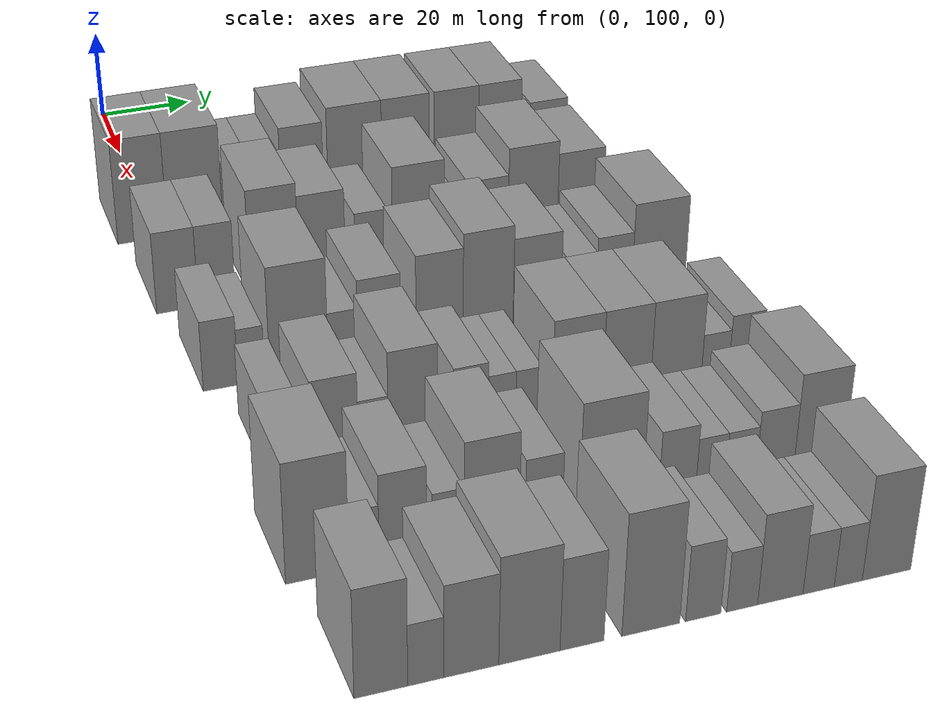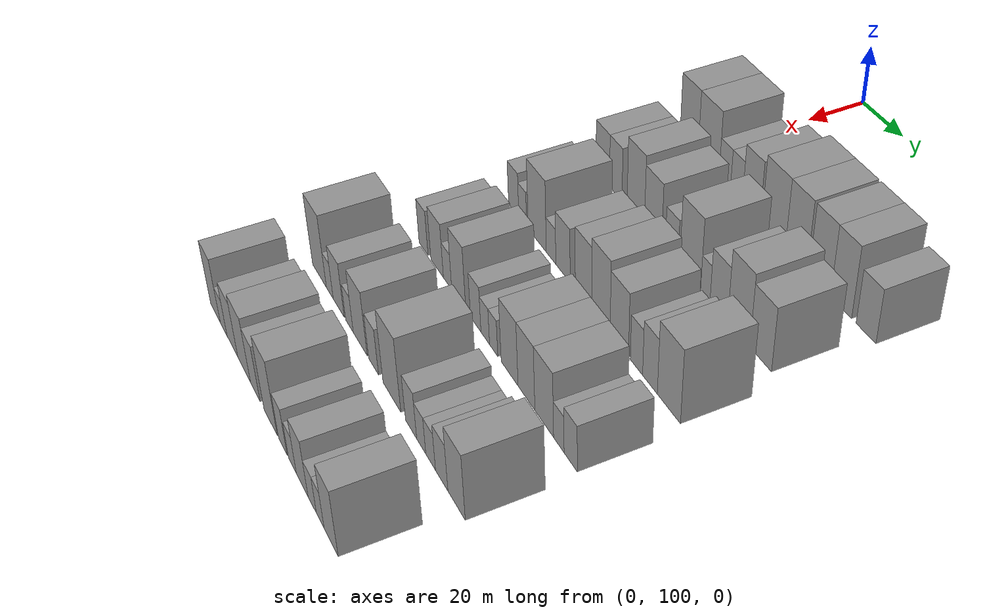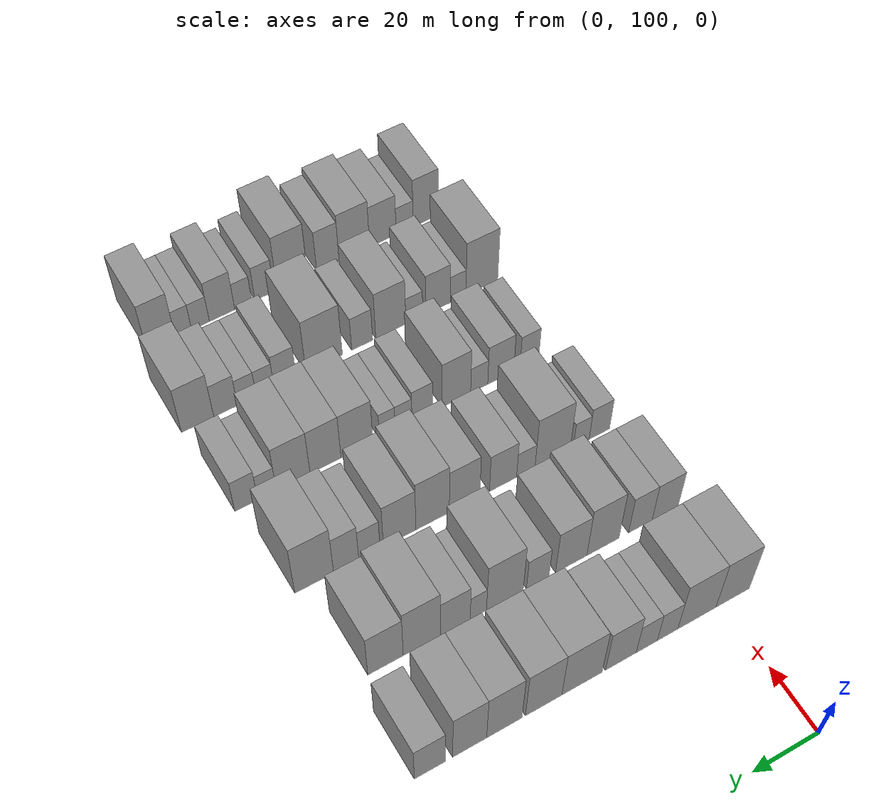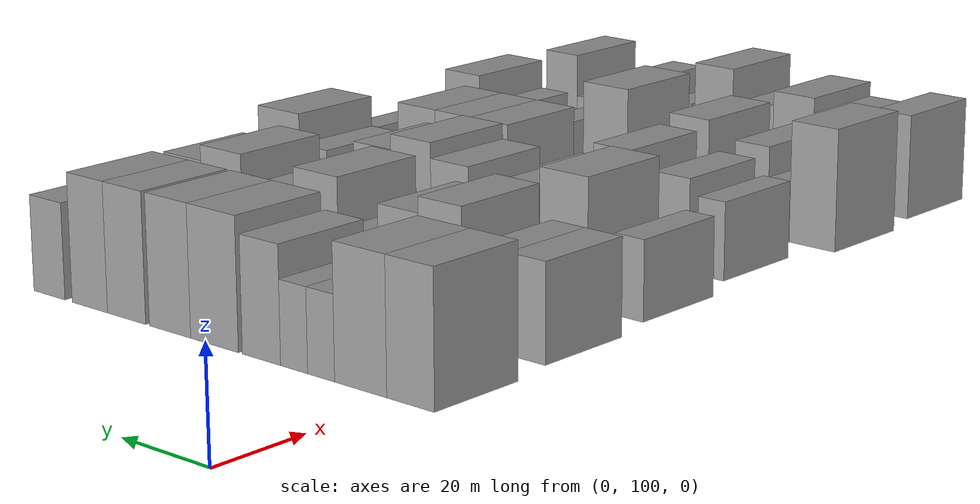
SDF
<sdf version="1.6">
 <world name="default">
  <model name="building_67">
   <static>1</static>
   <pose>50.0000 96.9060 0 0.000000 0.000000 0.000000</pose>
   <link name="link">
    <pose>0 0 12.00 0 0 0</pose>
    <collision name="collision"><geometry><box><size>20.0000 10.4666 24.0000</size></box></geometry></collision>
    <visual name="visual">
     <cast_shadows>0</cast_shadows>
     <geometry><box><size>20.0000 10.4666 24.0000</size></box></geometry>
     <material>
      <script>
       <uri>model://grey_wall/materials/scripts</uri>
       <uri>model://grey_wall/materials/textures</uri>
       <name>vrc/grey_wall</name>
      </script>
     </material>
    </visual>
   </link>
  </model>
  <model name="building_68">
   <static>1</static>
   <pose>50.0000 108.0340 0 0.000000 0.000000 0.000000</pose>
   <link name="link">
    <pose>0 0 12.00 0 0 0</pose>
    <collision name="collision"><geometry><box><size>20.0000 11.7893 24.0000</size></box></geometry></collision>
    <visual name="visual">
     <cast_shadows>0</cast_shadows>
     <geometry><box><size>20.0000 11.7893 24.0000</size></box></geometry>
     <material>
      <script>
       <uri>model://grey_wall/materials/scripts</uri>
       <uri>model://grey_wall/materials/textures</uri>
       <name>vrc/grey_wall</name>
      </script>
     </material>
    </visual>
   </link>
  </model>
  <model name="building_69">
   <static>1</static>
   <pose>50.0000 117.0677 0 0.000000 0.000000 0.000000</pose>
   <link name="link">
    <pose>0 0 7.50 0 0 0</pose>
    <collision name="collision"><geometry><box><size>20.0000 6.2782 15.0000</size></box></geometry></collision>
    <visual name="visual">
     <cast_shadows>0</cast_shadows>
     <geometry><box><size>20.0000 6.2782 15.0000</size></box></geometry>
     <material>
      <script>
       <uri>model://grey_wall/materials/scripts</uri>
       <uri>model://grey_wall/materials/textures</uri>
       <name>vrc/grey_wall</name>
      </script>
     </material>
    </visual>
   </link>
  </model>
  <model name="building_70">
   <static>1</static>
   <pose>50.0000 123.4036 0 0.000000 0.000000 0.000000</pose>
   <link name="link">
    <pose>0 0 7.50 0 0 0</pose>
    <collision name="collision"><geometry><box><size>20.0000 6.3938 15.0000</size></box></geometry></collision>
    <visual name="visual">
     <cast_shadows>0</cast_shadows>
     <geometry><box><size>20.0000 6.3938 15.0000</size></box></geometry>
     <material>
      <script>
       <uri>model://grey_wall/materials/scripts</uri>
       <uri>model://grey_wall/materials/textures</uri>
       <name>vrc/grey_wall</name>
      </script>
     </material>
    </visual>
   </link>
  </model>
  <model name="building_71">
   <static>1</static>
   <pose>50.0000 131.2240 0 0.000000 0.000000 0.000000</pose>
   <link name="link">
    <pose>0 0 10.50 0 0 0</pose>
    <collision name="collision"><geometry><box><size>20.0000 9.2470 21.0000</size></box></geometry></collision>
    <visual name="visual">
     <cast_shadows>0</cast_shadows>
     <geometry><box><size>20.0000 9.2470 21.0000</size></box></geometry>
     <material>
      <script>
       <uri>model://grey_wall/materials/scripts</uri>
       <uri>model://grey_wall/materials/textures</uri>
       <name>vrc/grey_wall</name>
      </script>
     </material>
    </visual>
   </link>
  </model>
  <model name="building_72">
   <static>1</static>
   <pose>50.0000 142.8083 0 0.000000 0.000000 0.000000</pose>
   <link name="link">
    <pose>0 0 12.00 0 0 0</pose>
    <collision name="collision"><geometry><box><size>20.0000 11.9215 24.0000</size></box></geometry></collision>
    <visual name="visual">
     <cast_shadows>0</cast_shadows>
     <geometry><box><size>20.0000 11.9215 24.0000</size></box></geometry>
     <material>
      <script>
       <uri>model://grey_wall/materials/scripts</uri>
       <uri>model://grey_wall/materials/textures</uri>
       <name>vrc/grey_wall</name>
      </script>
     </material>
    </visual>
   </link>
  </model>
  <model name="building_73">
   <static>1</static>
   <pose>50.0000 154.0795 0 0.000000 0.000000 0.000000</pose>
   <link name="link">
    <pose>0 0 12.00 0 0 0</pose>
    <collision name="collision"><geometry><box><size>20.0000 10.6209 24.0000</size></box></geometry></collision>
    <visual name="visual">
     <cast_shadows>0</cast_shadows>
     <geometry><box><size>20.0000 10.6209 24.0000</size></box></geometry>
     <material>
      <script>
       <uri>model://grey_wall/materials/scripts</uri>
       <uri>model://grey_wall/materials/textures</uri>
       <name>vrc/grey_wall</name>
      </script>
     </material>
    </visual>
   </link>
  </model>
  <model name="building_74">
   <static>1</static>
   <pose>50.0000 165.4645 0 0.000000 0.000000 0.000000</pose>
   <link name="link">
    <pose>0 0 12.00 0 0 0</pose>
    <collision name="collision"><geometry><box><size>20.0000 10.1491 24.0000</size></box></geometry></collision>
    <visual name="visual">
     <cast_shadows>0</cast_shadows>
     <geometry><box><size>20.0000 10.1491 24.0000</size></box></geometry>
     <material>
      <script>
       <uri>model://grey_wall/materials/scripts</uri>
       <uri>model://grey_wall/materials/textures</uri>
       <name>vrc/grey_wall</name>
      </script>
     </material>
    </visual>
   </link>
  </model>
  <model name="building_75">
   <static>1</static>
   <pose>50.0000 175.3621 0 0.000000 0.000000 0.000000</pose>
   <link name="link">
    <pose>0 0 12.00 0 0 0</pose>
    <collision name="collision"><geometry><box><size>20.0000 9.6459 24.0000</size></box></geometry></collision>
    <visual name="visual">
     <cast_shadows>0</cast_shadows>
     <geometry><box><size>20.0000 9.6459 24.0000</size></box></geometry>
     <material>
      <script>
       <uri>model://grey_wall/materials/scripts</uri>
       <uri>model://grey_wall/materials/textures</uri>
       <name>vrc/grey_wall</name>
      </script>
     </material>
    </visual>
   </link>
  </model>
  <model name="building_76">
   <static>1</static>
   <pose>50.0000 186.5350 0 0.000000 0.000000 0.000000</pose>
   <link name="link">
    <pose>0 0 9.00 0 0 0</pose>
    <collision name="collision"><geometry><box><size>20.0000 8.7000 18.0000</size></box></geometry></collision>
    <visual name="visual">
     <cast_shadows>0</cast_shadows>
     <geometry><box><size>20.0000 8.7000 18.0000</size></box></geometry>
     <material>
      <script>
       <uri>model://grey_wall/materials/scripts</uri>
       <uri>model://grey_wall/materials/textures</uri>
       <name>vrc/grey_wall</name>
      </script>
     </material>
    </visual>
   </link>
  </model>
  <model name="building_176">
   <static>1</static>
   <pose>79.0000 97.7559 0 0.000000 0.000000 0.000000</pose>
   <link name="link">
    <pose>0 0 9.00 0 0 0</pose>
    <collision name="collision"><geometry><box><size>20.0000 8.3151 18.0000</size></box></geometry></collision>
    <visual name="visual">
     <cast_shadows>0</cast_shadows>
     <geometry><box><size>20.0000 8.3151 18.0000</size></box></geometry>
     <material>
      <script>
       <uri>model://grey_wall/materials/scripts</uri>
       <uri>model://grey_wall/materials/textures</uri>
       <name>vrc/grey_wall</name>
      </script>
     </material>
    </visual>
   </link>
  </model>
  <model name="building_177">
   <static>1</static>
   <pose>79.0000 105.6463 0 0.000000 0.000000 0.000000</pose>
   <link name="link">
    <pose>0 0 9.00 0 0 0</pose>
    <collision name="collision"><geometry><box><size>20.0000 7.4658 18.0000</size></box></geometry></collision>
    <visual name="visual">
     <cast_shadows>0</cast_shadows>
     <geometry><box><size>20.0000 7.4658 18.0000</size></box></geometry>
     <material>
      <script>
       <uri>model://grey_wall/materials/scripts</uri>
       <uri>model://grey_wall/materials/textures</uri>
       <name>vrc/grey_wall</name>
      </script>
     </material>
    </visual>
   </link>
  </model>
  <model name="building_178">
   <static>1</static>
   <pose>79.0000 117.3897 0 0.000000 0.000000 0.000000</pose>
   <link name="link">
    <pose>0 0 12.00 0 0 0</pose>
    <collision name="collision"><geometry><box><size>20.0000 10.0209 24.0000</size></box></geometry></collision>
    <visual name="visual">
     <cast_shadows>0</cast_shadows>
     <geometry><box><size>20.0000 10.0209 24.0000</size></box></geometry>
     <material>
      <script>
       <uri>model://grey_wall/materials/scripts</uri>
       <uri>model://grey_wall/materials/textures</uri>
       <name>vrc/grey_wall</name>
      </script>
     </material>
    </visual>
   </link>
  </model>
  <model name="building_179">
   <static>1</static>
   <pose>79.0000 127.2166 0 0.000000 0.000000 0.000000</pose>
   <link name="link">
    <pose>0 0 10.50 0 0 0</pose>
    <collision name="collision"><geometry><box><size>20.0000 9.6329 21.0000</size></box></geometry></collision>
    <visual name="visual">
     <cast_shadows>0</cast_shadows>
     <geometry><box><size>20.0000 9.6329 21.0000</size></box></geometry>
     <material>
      <script>
       <uri>model://grey_wall/materials/scripts</uri>
       <uri>model://grey_wall/materials/textures</uri>
       <name>vrc/grey_wall</name>
      </script>
     </material>
    </visual>
   </link>
  </model>
  <model name="building_180">
   <static>1</static>
   <pose>79.0000 137.4561 0 0.000000 0.000000 0.000000</pose>
   <link name="link">
    <pose>0 0 7.50 0 0 0</pose>
    <collision name="collision"><geometry><box><size>20.0000 6.8461 15.0000</size></box></geometry></collision>
    <visual name="visual">
     <cast_shadows>0</cast_shadows>
     <geometry><box><size>20.0000 6.8461 15.0000</size></box></geometry>
     <material>
      <script>
       <uri>model://grey_wall/materials/scripts</uri>
       <uri>model://grey_wall/materials/textures</uri>
       <name>vrc/grey_wall</name>
      </script>
     </material>
    </visual>
   </link>
  </model>
  <model name="building_181">
   <static>1</static>
   <pose>79.0000 147.3901 0 0.000000 0.000000 0.000000</pose>
   <link name="link">
    <pose>0 0 12.00 0 0 0</pose>
    <collision name="collision"><geometry><box><size>20.0000 11.0218 24.0000</size></box></geometry></collision>
    <visual name="visual">
     <cast_shadows>0</cast_shadows>
     <geometry><box><size>20.0000 11.0218 24.0000</size></box></geometry>
     <material>
      <script>
       <uri>model://grey_wall/materials/scripts</uri>
       <uri>model://grey_wall/materials/textures</uri>
       <name>vrc/grey_wall</name>
      </script>
     </material>
    </visual>
   </link>
  </model>
  <model name="building_182">
   <static>1</static>
   <pose>79.0000 155.3164 0 0.000000 0.000000 0.000000</pose>
   <link name="link">
    <pose>0 0 6.00 0 0 0</pose>
    <collision name="collision"><geometry><box><size>20.0000 4.8308 12.0000</size></box></geometry></collision>
    <visual name="visual">
     <cast_shadows>0</cast_shadows>
     <geometry><box><size>20.0000 4.8308 12.0000</size></box></geometry>
     <material>
      <script>
       <uri>model://grey_wall/materials/scripts</uri>
       <uri>model://grey_wall/materials/textures</uri>
       <name>vrc/grey_wall</name>
      </script>
     </material>
    </visual>
   </link>
  </model>
  <model name="building_183">
   <static>1</static>
   <pose>79.0000 162.1378 0 0.000000 0.000000 0.000000</pose>
   <link name="link">
    <pose>0 0 9.00 0 0 0</pose>
    <collision name="collision"><geometry><box><size>20.0000 8.8120 18.0000</size></box></geometry></collision>
    <visual name="visual">
     <cast_shadows>0</cast_shadows>
     <geometry><box><size>20.0000 8.8120 18.0000</size></box></geometry>
     <material>
      <script>
       <uri>model://grey_wall/materials/scripts</uri>
       <uri>model://grey_wall/materials/textures</uri>
       <name>vrc/grey_wall</name>
      </script>
     </material>
    </visual>
   </link>
  </model>
  <model name="building_184">
   <static>1</static>
   <pose>79.0000 171.9306 0 0.000000 0.000000 0.000000</pose>
   <link name="link">
    <pose>0 0 12.00 0 0 0</pose>
    <collision name="collision"><geometry><box><size>20.0000 10.7736 24.0000</size></box></geometry></collision>
    <visual name="visual">
     <cast_shadows>0</cast_shadows>
     <geometry><box><size>20.0000 10.7736 24.0000</size></box></geometry>
     <material>
      <script>
       <uri>model://grey_wall/materials/scripts</uri>
       <uri>model://grey_wall/materials/textures</uri>
       <name>vrc/grey_wall</name>
      </script>
     </material>
    </visual>
   </link>
  </model>
  <model name="building_185">
   <static>1</static>
   <pose>79.0000 182.3930 0 0.000000 0.000000 0.000000</pose>
   <link name="link">
    <pose>0 0 10.50 0 0 0</pose>
    <collision name="collision"><geometry><box><size>20.0000 10.1513 21.0000</size></box></geometry></collision>
    <visual name="visual">
     <cast_shadows>0</cast_shadows>
     <geometry><box><size>20.0000 10.1513 21.0000</size></box></geometry>
     <material>
      <script>
       <uri>model://grey_wall/materials/scripts</uri>
       <uri>model://grey_wall/materials/textures</uri>
       <name>vrc/grey_wall</name>
      </script>
     </material>
    </visual>
   </link>
  </model>
  <model name="building_291">
   <static>1</static>
   <pose>108.0000 99.3912 0 0.000000 0.000000 0.000000</pose>
   <link name="link">
    <pose>0 0 7.50 0 0 0</pose>
    <collision name="collision"><geometry><box><size>20.0000 6.6064 15.0000</size></box></geometry></collision>
    <visual name="visual">
     <cast_shadows>0</cast_shadows>
     <geometry><box><size>20.0000 6.6064 15.0000</size></box></geometry>
     <material>
      <script>
       <uri>model://grey_wall/materials/scripts</uri>
       <uri>model://grey_wall/materials/textures</uri>
       <name>vrc/grey_wall</name>
      </script>
     </material>
    </visual>
   </link>
  </model>
  <model name="building_292">
   <static>1</static>
   <pose>108.0000 105.2369 0 0.000000 0.000000 0.000000</pose>
   <link name="link">
    <pose>0 0 6.00 0 0 0</pose>
    <collision name="collision"><geometry><box><size>20.0000 5.0850 12.0000</size></box></geometry></collision>
    <visual name="visual">
     <cast_shadows>0</cast_shadows>
     <geometry><box><size>20.0000 5.0850 12.0000</size></box></geometry>
     <material>
      <script>
       <uri>model://grey_wall/materials/scripts</uri>
       <uri>model://grey_wall/materials/textures</uri>
       <name>vrc/grey_wall</name>
      </script>
     </material>
    </visual>
   </link>
  </model>
  <model name="building_293">
   <static>1</static>
   <pose>108.0000 114.4026 0 0.000000 0.000000 0.000000</pose>
   <link name="link">
    <pose>0 0 12.00 0 0 0</pose>
    <collision name="collision"><geometry><box><size>20.0000 11.2464 24.0000</size></box></geometry></collision>
    <visual name="visual">
     <cast_shadows>0</cast_shadows>
     <geometry><box><size>20.0000 11.2464 24.0000</size></box></geometry>
     <material>
      <script>
       <uri>model://grey_wall/materials/scripts</uri>
       <uri>model://grey_wall/materials/textures</uri>
       <name>vrc/grey_wall</name>
      </script>
     </material>
    </visual>
   </link>
  </model>
  <model name="building_294">
   <static>1</static>
   <pose>108.0000 122.9196 0 0.000000 0.000000 0.000000</pose>
   <link name="link">
    <pose>0 0 6.00 0 0 0</pose>
    <collision name="collision"><geometry><box><size>20.0000 5.7877 12.0000</size></box></geometry></collision>
    <visual name="visual">
     <cast_shadows>0</cast_shadows>
     <geometry><box><size>20.0000 5.7877 12.0000</size></box></geometry>
     <material>
      <script>
       <uri>model://grey_wall/materials/scripts</uri>
       <uri>model://grey_wall/materials/textures</uri>
       <name>vrc/grey_wall</name>
      </script>
     </material>
    </visual>
   </link>
  </model>
  <model name="building_295">
   <static>1</static>
   <pose>108.0000 130.0580 0 0.000000 0.000000 0.000000</pose>
   <link name="link">
    <pose>0 0 9.00 0 0 0</pose>
    <collision name="collision"><geometry><box><size>20.0000 8.4890 18.0000</size></box></geometry></collision>
    <visual name="visual">
     <cast_shadows>0</cast_shadows>
     <geometry><box><size>20.0000 8.4890 18.0000</size></box></geometry>
     <material>
      <script>
       <uri>model://grey_wall/materials/scripts</uri>
       <uri>model://grey_wall/materials/textures</uri>
       <name>vrc/grey_wall</name>
      </script>
     </material>
    </visual>
   </link>
  </model>
  <model name="building_296">
   <static>1</static>
   <pose>108.0000 141.9940 0 0.000000 0.000000 0.000000</pose>
   <link name="link">
    <pose>0 0 10.50 0 0 0</pose>
    <collision name="collision"><geometry><box><size>20.0000 9.3831 21.0000</size></box></geometry></collision>
    <visual name="visual">
     <cast_shadows>0</cast_shadows>
     <geometry><box><size>20.0000 9.3831 21.0000</size></box></geometry>
     <material>
      <script>
       <uri>model://grey_wall/materials/scripts</uri>
       <uri>model://grey_wall/materials/textures</uri>
       <name>vrc/grey_wall</name>
      </script>
     </material>
    </visual>
   </link>
  </model>
  <model name="building_297">
   <static>1</static>
   <pose>108.0000 151.7623 0 0.000000 0.000000 0.000000</pose>
   <link name="link">
    <pose>0 0 12.00 0 0 0</pose>
    <collision name="collision"><geometry><box><size>20.0000 10.1534 24.0000</size></box></geometry></collision>
    <visual name="visual">
     <cast_shadows>0</cast_shadows>
     <geometry><box><size>20.0000 10.1534 24.0000</size></box></geometry>
     <material>
      <script>
       <uri>model://grey_wall/materials/scripts</uri>
       <uri>model://grey_wall/materials/textures</uri>
       <name>vrc/grey_wall</name>
      </script>
     </material>
    </visual>
   </link>
  </model>
  <model name="building_298">
   <static>1</static>
   <pose>108.0000 161.7187 0 0.000000 0.000000 0.000000</pose>
   <link name="link">
    <pose>0 0 10.50 0 0 0</pose>
    <collision name="collision"><geometry><box><size>20.0000 9.7595 21.0000</size></box></geometry></collision>
    <visual name="visual">
     <cast_shadows>0</cast_shadows>
     <geometry><box><size>20.0000 9.7595 21.0000</size></box></geometry>
     <material>
      <script>
       <uri>model://grey_wall/materials/scripts</uri>
       <uri>model://grey_wall/materials/textures</uri>
       <name>vrc/grey_wall</name>
      </script>
     </material>
    </visual>
   </link>
  </model>
  <model name="building_299">
   <static>1</static>
   <pose>108.0000 170.7561 0 0.000000 0.000000 0.000000</pose>
   <link name="link">
    <pose>0 0 7.50 0 0 0</pose>
    <collision name="collision"><geometry><box><size>20.0000 6.3153 15.0000</size></box></geometry></collision>
    <visual name="visual">
     <cast_shadows>0</cast_shadows>
     <geometry><box><size>20.0000 6.3153 15.0000</size></box></geometry>
     <material>
      <script>
       <uri>model://grey_wall/materials/scripts</uri>
       <uri>model://grey_wall/materials/textures</uri>
       <name>vrc/grey_wall</name>
      </script>
     </material>
    </visual>
   </link>
  </model>
  <model name="building_300">
   <static>1</static>
   <pose>108.0000 177.6288 0 0.000000 0.000000 0.000000</pose>
   <link name="link">
    <pose>0 0 9.00 0 0 0</pose>
    <collision name="collision"><geometry><box><size>20.0000 7.4300 18.0000</size></box></geometry></collision>
    <visual name="visual">
     <cast_shadows>0</cast_shadows>
     <geometry><box><size>20.0000 7.4300 18.0000</size></box></geometry>
     <material>
      <script>
       <uri>model://grey_wall/materials/scripts</uri>
       <uri>model://grey_wall/materials/textures</uri>
       <name>vrc/grey_wall</name>
      </script>
     </material>
    </visual>
   </link>
  </model>
  <model name="building_301">
   <static>1</static>
   <pose>108.0000 186.9994 0 0.000000 0.000000 0.000000</pose>
   <link name="link">
    <pose>0 0 12.00 0 0 0</pose>
    <collision name="collision"><geometry><box><size>20.0000 11.3113 24.0000</size></box></geometry></collision>
    <visual name="visual">
     <cast_shadows>0</cast_shadows>
     <geometry><box><size>20.0000 11.3113 24.0000</size></box></geometry>
     <material>
      <script>
       <uri>model://grey_wall/materials/scripts</uri>
       <uri>model://grey_wall/materials/textures</uri>
       <name>vrc/grey_wall</name>
      </script>
     </material>
    </visual>
   </link>
  </model>
  <model name="building_402">
   <static>1</static>
   <pose>137.0000 103.5825 0 0.000000 0.000000 0.000000</pose>
   <link name="link">
    <pose>0 0 7.50 0 0 0</pose>
    <collision name="collision"><geometry><box><size>20.0000 6.1637 15.0000</size></box></geometry></collision>
    <visual name="visual">
     <cast_shadows>0</cast_shadows>
     <geometry><box><size>20.0000 6.1637 15.0000</size></box></geometry>
     <material>
      <script>
       <uri>model://grey_wall/materials/scripts</uri>
       <uri>model://grey_wall/materials/textures</uri>
       <name>vrc/grey_wall</name>
      </script>
     </material>
    </visual>
   </link>
  </model>
  <model name="building_403">
   <static>1</static>
   <pose>137.0000 112.8990 0 0.000000 0.000000 0.000000</pose>
   <link name="link">
    <pose>0 0 9.00 0 0 0</pose>
    <collision name="collision"><geometry><box><size>20.0000 8.4694 18.0000</size></box></geometry></collision>
    <visual name="visual">
     <cast_shadows>0</cast_shadows>
     <geometry><box><size>20.0000 8.4694 18.0000</size></box></geometry>
     <material>
      <script>
       <uri>model://grey_wall/materials/scripts</uri>
       <uri>model://grey_wall/materials/textures</uri>
       <name>vrc/grey_wall</name>
      </script>
     </material>
    </visual>
   </link>
  </model>
  <model name="building_404">
   <static>1</static>
   <pose>137.0000 119.8879 0 0.000000 0.000000 0.000000</pose>
   <link name="link">
    <pose>0 0 6.00 0 0 0</pose>
    <collision name="collision"><geometry><box><size>20.0000 5.5083 12.0000</size></box></geometry></collision>
    <visual name="visual">
     <cast_shadows>0</cast_shadows>
     <geometry><box><size>20.0000 5.5083 12.0000</size></box></geometry>
     <material>
      <script>
       <uri>model://grey_wall/materials/scripts</uri>
       <uri>model://grey_wall/materials/textures</uri>
       <name>vrc/grey_wall</name>
      </script>
     </material>
    </visual>
   </link>
  </model>
  <model name="building_405">
   <static>1</static>
   <pose>137.0000 127.1871 0 0.000000 0.000000 0.000000</pose>
   <link name="link">
    <pose>0 0 10.50 0 0 0</pose>
    <collision name="collision"><geometry><box><size>20.0000 9.0901 21.0000</size></box></geometry></collision>
    <visual name="visual">
     <cast_shadows>0</cast_shadows>
     <geometry><box><size>20.0000 9.0901 21.0000</size></box></geometry>
     <material>
      <script>
       <uri>model://grey_wall/materials/scripts</uri>
       <uri>model://grey_wall/materials/textures</uri>
       <name>vrc/grey_wall</name>
      </script>
     </material>
    </visual>
   </link>
  </model>
  <model name="building_406">
   <static>1</static>
   <pose>137.0000 137.9869 0 0.000000 0.000000 0.000000</pose>
   <link name="link">
    <pose>0 0 7.50 0 0 0</pose>
    <collision name="collision"><geometry><box><size>20.0000 6.5096 15.0000</size></box></geometry></collision>
    <visual name="visual">
     <cast_shadows>0</cast_shadows>
     <geometry><box><size>20.0000 6.5096 15.0000</size></box></geometry>
     <material>
      <script>
       <uri>model://grey_wall/materials/scripts</uri>
       <uri>model://grey_wall/materials/textures</uri>
       <name>vrc/grey_wall</name>
      </script>
     </material>
    </visual>
   </link>
  </model>
  <model name="building_407">
   <static>1</static>
   <pose>137.0000 143.8694 0 0.000000 0.000000 0.000000</pose>
   <link name="link">
    <pose>0 0 6.00 0 0 0</pose>
    <collision name="collision"><geometry><box><size>20.0000 5.2553 12.0000</size></box></geometry></collision>
    <visual name="visual">
     <cast_shadows>0</cast_shadows>
     <geometry><box><size>20.0000 5.2553 12.0000</size></box></geometry>
     <material>
      <script>
       <uri>model://grey_wall/materials/scripts</uri>
       <uri>model://grey_wall/materials/textures</uri>
       <name>vrc/grey_wall</name>
      </script>
     </material>
    </visual>
   </link>
  </model>
  <model name="building_408">
   <static>1</static>
   <pose>137.0000 148.9737 0 0.000000 0.000000 0.000000</pose>
   <link name="link">
    <pose>0 0 6.00 0 0 0</pose>
    <collision name="collision"><geometry><box><size>20.0000 4.9534 12.0000</size></box></geometry></collision>
    <visual name="visual">
     <cast_shadows>0</cast_shadows>
     <geometry><box><size>20.0000 4.9534 12.0000</size></box></geometry>
     <material>
      <script>
       <uri>model://grey_wall/materials/scripts</uri>
       <uri>model://grey_wall/materials/textures</uri>
       <name>vrc/grey_wall</name>
      </script>
     </material>
    </visual>
   </link>
  </model>
  <model name="building_409">
   <static>1</static>
   <pose>137.0000 158.3519 0 0.000000 0.000000 0.000000</pose>
   <link name="link">
    <pose>0 0 10.50 0 0 0</pose>
    <collision name="collision"><geometry><box><size>20.0000 9.8030 21.0000</size></box></geometry></collision>
    <visual name="visual">
     <cast_shadows>0</cast_shadows>
     <geometry><box><size>20.0000 9.8030 21.0000</size></box></geometry>
     <material>
      <script>
       <uri>model://grey_wall/materials/scripts</uri>
       <uri>model://grey_wall/materials/textures</uri>
       <name>vrc/grey_wall</name>
      </script>
     </material>
    </visual>
   </link>
  </model>
  <model name="building_410">
   <static>1</static>
   <pose>137.0000 167.9836 0 0.000000 0.000000 0.000000</pose>
   <link name="link">
    <pose>0 0 10.50 0 0 0</pose>
    <collision name="collision"><geometry><box><size>20.0000 9.4603 21.0000</size></box></geometry></collision>
    <visual name="visual">
     <cast_shadows>0</cast_shadows>
     <geometry><box><size>20.0000 9.4603 21.0000</size></box></geometry>
     <material>
      <script>
       <uri>model://grey_wall/materials/scripts</uri>
       <uri>model://grey_wall/materials/textures</uri>
       <name>vrc/grey_wall</name>
      </script>
     </material>
    </visual>
   </link>
  </model>
  <model name="building_411">
   <static>1</static>
   <pose>137.0000 177.7825 0 0.000000 0.000000 0.000000</pose>
   <link name="link">
    <pose>0 0 10.50 0 0 0</pose>
    <collision name="collision"><geometry><box><size>20.0000 10.1376 21.0000</size></box></geometry></collision>
    <visual name="visual">
     <cast_shadows>0</cast_shadows>
     <geometry><box><size>20.0000 10.1376 21.0000</size></box></geometry>
     <material>
      <script>
       <uri>model://grey_wall/materials/scripts</uri>
       <uri>model://grey_wall/materials/textures</uri>
       <name>vrc/grey_wall</name>
      </script>
     </material>
    </visual>
   </link>
  </model>
  <model name="building_412">
   <static>1</static>
   <pose>137.0000 185.6206 0 0.000000 0.000000 0.000000</pose>
   <link name="link">
    <pose>0 0 6.00 0 0 0</pose>
    <collision name="collision"><geometry><box><size>20.0000 5.5385 12.0000</size></box></geometry></collision>
    <visual name="visual">
     <cast_shadows>0</cast_shadows>
     <geometry><box><size>20.0000 5.5385 12.0000</size></box></geometry>
     <material>
      <script>
       <uri>model://grey_wall/materials/scripts</uri>
       <uri>model://grey_wall/materials/textures</uri>
       <name>vrc/grey_wall</name>
      </script>
     </material>
    </visual>
   </link>
  </model>
  <model name="building_413">
   <static>1</static>
   <pose>137.0000 191.7824 0 0.000000 0.000000 0.000000</pose>
   <link name="link">
    <pose>0 0 7.50 0 0 0</pose>
    <collision name="collision"><geometry><box><size>20.0000 6.7850 15.0000</size></box></geometry></collision>
    <visual name="visual">
     <cast_shadows>0</cast_shadows>
     <geometry><box><size>20.0000 6.7850 15.0000</size></box></geometry>
     <material>
      <script>
       <uri>model://grey_wall/materials/scripts</uri>
       <uri>model://grey_wall/materials/textures</uri>
       <name>vrc/grey_wall</name>
      </script>
     </material>
    </visual>
   </link>
  </model>
  <model name="building_514">
   <static>1</static>
   <pose>166.0000 101.4111 0 0.000000 0.000000 0.000000</pose>
   <link name="link">
    <pose>0 0 12.00 0 0 0</pose>
    <collision name="collision"><geometry><box><size>20.0000 10.6658 24.0000</size></box></geometry></collision>
    <visual name="visual">
     <cast_shadows>0</cast_shadows>
     <geometry><box><size>20.0000 10.6658 24.0000</size></box></geometry>
     <material>
      <script>
       <uri>model://grey_wall/materials/scripts</uri>
       <uri>model://grey_wall/materials/textures</uri>
       <name>vrc/grey_wall</name>
      </script>
     </material>
    </visual>
   </link>
  </model>
  <model name="building_515">
   <static>1</static>
   <pose>166.0000 109.3160 0 0.000000 0.000000 0.000000</pose>
   <link name="link">
    <pose>0 0 6.00 0 0 0</pose>
    <collision name="collision"><geometry><box><size>20.0000 5.1440 12.0000</size></box></geometry></collision>
    <visual name="visual">
     <cast_shadows>0</cast_shadows>
     <geometry><box><size>20.0000 5.1440 12.0000</size></box></geometry>
     <material>
      <script>
       <uri>model://grey_wall/materials/scripts</uri>
       <uri>model://grey_wall/materials/textures</uri>
       <name>vrc/grey_wall</name>
      </script>
     </material>
    </visual>
   </link>
  </model>
  <model name="building_516">
   <static>1</static>
   <pose>166.0000 115.9597 0 0.000000 0.000000 0.000000</pose>
   <link name="link">
    <pose>0 0 9.00 0 0 0</pose>
    <collision name="collision"><geometry><box><size>20.0000 8.1435 18.0000</size></box></geometry></collision>
    <visual name="visual">
     <cast_shadows>0</cast_shadows>
     <geometry><box><size>20.0000 8.1435 18.0000</size></box></geometry>
     <material>
      <script>
       <uri>model://grey_wall/materials/scripts</uri>
       <uri>model://grey_wall/materials/textures</uri>
       <name>vrc/grey_wall</name>
      </script>
     </material>
    </visual>
   </link>
  </model>
  <model name="building_517">
   <static>1</static>
   <pose>166.0000 123.7728 0 0.000000 0.000000 0.000000</pose>
   <link name="link">
    <pose>0 0 6.00 0 0 0</pose>
    <collision name="collision"><geometry><box><size>20.0000 5.4826 12.0000</size></box></geometry></collision>
    <visual name="visual">
     <cast_shadows>0</cast_shadows>
     <geometry><box><size>20.0000 5.4826 12.0000</size></box></geometry>
     <material>
      <script>
       <uri>model://grey_wall/materials/scripts</uri>
       <uri>model://grey_wall/materials/textures</uri>
       <name>vrc/grey_wall</name>
      </script>
     </material>
    </visual>
   </link>
  </model>
  <model name="building_518">
   <static>1</static>
   <pose>166.0000 131.3986 0 0.000000 0.000000 0.000000</pose>
   <link name="link">
    <pose>0 0 10.50 0 0 0</pose>
    <collision name="collision"><geometry><box><size>20.0000 9.7689 21.0000</size></box></geometry></collision>
    <visual name="visual">
     <cast_shadows>0</cast_shadows>
     <geometry><box><size>20.0000 9.7689 21.0000</size></box></geometry>
     <material>
      <script>
       <uri>model://grey_wall/materials/scripts</uri>
       <uri>model://grey_wall/materials/textures</uri>
       <name>vrc/grey_wall</name>
      </script>
     </material>
    </visual>
   </link>
  </model>
  <model name="building_519">
   <static>1</static>
   <pose>166.0000 140.6296 0 0.000000 0.000000 0.000000</pose>
   <link name="link">
    <pose>0 0 7.50 0 0 0</pose>
    <collision name="collision"><geometry><box><size>20.0000 6.6932 15.0000</size></box></geometry></collision>
    <visual name="visual">
     <cast_shadows>0</cast_shadows>
     <geometry><box><size>20.0000 6.6932 15.0000</size></box></geometry>
     <material>
      <script>
       <uri>model://grey_wall/materials/scripts</uri>
       <uri>model://grey_wall/materials/textures</uri>
       <name>vrc/grey_wall</name>
      </script>
     </material>
    </visual>
   </link>
  </model>
  <model name="building_520">
   <static>1</static>
   <pose>166.0000 152.7469 0 0.000000 0.000000 0.000000</pose>
   <link name="link">
    <pose>0 0 12.00 0 0 0</pose>
    <collision name="collision"><geometry><box><size>20.0000 11.5414 24.0000</size></box></geometry></collision>
    <visual name="visual">
     <cast_shadows>0</cast_shadows>
     <geometry><box><size>20.0000 11.5414 24.0000</size></box></geometry>
     <material>
      <script>
       <uri>model://grey_wall/materials/scripts</uri>
       <uri>model://grey_wall/materials/textures</uri>
       <name>vrc/grey_wall</name>
      </script>
     </material>
    </visual>
   </link>
  </model>
  <model name="building_521">
   <static>1</static>
   <pose>166.0000 164.9763 0 0.000000 0.000000 0.000000</pose>
   <link name="link">
    <pose>0 0 7.50 0 0 0</pose>
    <collision name="collision"><geometry><box><size>20.0000 6.9174 15.0000</size></box></geometry></collision>
    <visual name="visual">
     <cast_shadows>0</cast_shadows>
     <geometry><box><size>20.0000 6.9174 15.0000</size></box></geometry>
     <material>
      <script>
       <uri>model://grey_wall/materials/scripts</uri>
       <uri>model://grey_wall/materials/textures</uri>
       <name>vrc/grey_wall</name>
      </script>
     </material>
    </visual>
   </link>
  </model>
  <model name="building_522">
   <static>1</static>
   <pose>166.0000 171.2101 0 0.000000 0.000000 0.000000</pose>
   <link name="link">
    <pose>0 0 6.00 0 0 0</pose>
    <collision name="collision"><geometry><box><size>20.0000 5.5502 12.0000</size></box></geometry></collision>
    <visual name="visual">
     <cast_shadows>0</cast_shadows>
     <geometry><box><size>20.0000 5.5502 12.0000</size></box></geometry>
     <material>
      <script>
       <uri>model://grey_wall/materials/scripts</uri>
       <uri>model://grey_wall/materials/textures</uri>
       <name>vrc/grey_wall</name>
      </script>
     </material>
    </visual>
   </link>
  </model>
  <model name="building_523">
   <static>1</static>
   <pose>166.0000 176.8682 0 0.000000 0.000000 0.000000</pose>
   <link name="link">
    <pose>0 0 6.00 0 0 0</pose>
    <collision name="collision"><geometry><box><size>20.0000 5.7659 12.0000</size></box></geometry></collision>
    <visual name="visual">
     <cast_shadows>0</cast_shadows>
     <geometry><box><size>20.0000 5.7659 12.0000</size></box></geometry>
     <material>
      <script>
       <uri>model://grey_wall/materials/scripts</uri>
       <uri>model://grey_wall/materials/textures</uri>
       <name>vrc/grey_wall</name>
      </script>
     </material>
    </visual>
   </link>
  </model>
  <model name="building_524">
   <static>1</static>
   <pose>166.0000 183.3580 0 0.000000 0.000000 0.000000</pose>
   <link name="link">
    <pose>0 0 7.50 0 0 0</pose>
    <collision name="collision"><geometry><box><size>20.0000 7.2137 15.0000</size></box></geometry></collision>
    <visual name="visual">
     <cast_shadows>0</cast_shadows>
     <geometry><box><size>20.0000 7.2137 15.0000</size></box></geometry>
     <material>
      <script>
       <uri>model://grey_wall/materials/scripts</uri>
       <uri>model://grey_wall/materials/textures</uri>
       <name>vrc/grey_wall</name>
      </script>
     </material>
    </visual>
   </link>
  </model>
  <model name="building_525">
   <static>1</static>
   <pose>166.0000 191.8344 0 0.000000 0.000000 0.000000</pose>
   <link name="link">
    <pose>0 0 10.50 0 0 0</pose>
    <collision name="collision"><geometry><box><size>20.0000 9.7391 21.0000</size></box></geometry></collision>
    <visual name="visual">
     <cast_shadows>0</cast_shadows>
     <geometry><box><size>20.0000 9.7391 21.0000</size></box></geometry>
     <material>
      <script>
       <uri>model://grey_wall/materials/scripts</uri>
       <uri>model://grey_wall/materials/textures</uri>
       <name>vrc/grey_wall</name>
      </script>
     </material>
    </visual>
   </link>
  </model>
  <model name="building_631">
   <static>1</static>
   <pose>195.0000 103.1132 0 0.000000 0.000000 0.000000</pose>
   <link name="link">
    <pose>0 0 10.50 0 0 0</pose>
    <collision name="collision"><geometry><box><size>20.0000 8.4939 21.0000</size></box></geometry></collision>
    <visual name="visual">
     <cast_shadows>0</cast_shadows>
     <geometry><box><size>20.0000 8.4939 21.0000</size></box></geometry>
     <material>
      <script>
       <uri>model://grey_wall/materials/scripts</uri>
       <uri>model://grey_wall/materials/textures</uri>
       <name>vrc/grey_wall</name>
      </script>
     </material>
    </visual>
   </link>
  </model>
  <model name="building_632">
   <static>1</static>
   <pose>195.0000 110.2421 0 0.000000 0.000000 0.000000</pose>
   <link name="link">
    <pose>0 0 6.00 0 0 0</pose>
    <collision name="collision"><geometry><box><size>20.0000 5.7638 12.0000</size></box></geometry></collision>
    <visual name="visual">
     <cast_shadows>0</cast_shadows>
     <geometry><box><size>20.0000 5.7638 12.0000</size></box></geometry>
     <material>
      <script>
       <uri>model://grey_wall/materials/scripts</uri>
       <uri>model://grey_wall/materials/textures</uri>
       <name>vrc/grey_wall</name>
      </script>
     </material>
    </visual>
   </link>
  </model>
  <model name="building_633">
   <static>1</static>
   <pose>195.0000 117.5779 0 0.000000 0.000000 0.000000</pose>
   <link name="link">
    <pose>0 0 9.00 0 0 0</pose>
    <collision name="collision"><geometry><box><size>20.0000 8.9079 18.0000</size></box></geometry></collision>
    <visual name="visual">
     <cast_shadows>0</cast_shadows>
     <geometry><box><size>20.0000 8.9079 18.0000</size></box></geometry>
     <material>
      <script>
       <uri>model://grey_wall/materials/scripts</uri>
       <uri>model://grey_wall/materials/textures</uri>
       <name>vrc/grey_wall</name>
      </script>
     </material>
    </visual>
   </link>
  </model>
  <model name="building_634">
   <static>1</static>
   <pose>195.0000 127.0747 0 0.000000 0.000000 0.000000</pose>
   <link name="link">
    <pose>0 0 10.50 0 0 0</pose>
    <collision name="collision"><geometry><box><size>20.0000 10.0858 21.0000</size></box></geometry></collision>
    <visual name="visual">
     <cast_shadows>0</cast_shadows>
     <geometry><box><size>20.0000 10.0858 21.0000</size></box></geometry>
     <material>
      <script>
       <uri>model://grey_wall/materials/scripts</uri>
       <uri>model://grey_wall/materials/textures</uri>
       <name>vrc/grey_wall</name>
      </script>
     </material>
    </visual>
   </link>
  </model>
  <model name="building_635">
   <static>1</static>
   <pose>195.0000 135.8056 0 0.000000 0.000000 0.000000</pose>
   <link name="link">
    <pose>0 0 9.00 0 0 0</pose>
    <collision name="collision"><geometry><box><size>20.0000 7.3760 18.0000</size></box></geometry></collision>
    <visual name="visual">
     <cast_shadows>0</cast_shadows>
     <geometry><box><size>20.0000 7.3760 18.0000</size></box></geometry>
     <material>
      <script>
       <uri>model://grey_wall/materials/scripts</uri>
       <uri>model://grey_wall/materials/textures</uri>
       <name>vrc/grey_wall</name>
      </script>
     </material>
    </visual>
   </link>
  </model>
  <model name="building_636">
   <static>1</static>
   <pose>195.0000 147.4310 0 0.000000 0.000000 0.000000</pose>
   <link name="link">
    <pose>0 0 12.00 0 0 0</pose>
    <collision name="collision"><geometry><box><size>20.0000 9.8748 24.0000</size></box></geometry></collision>
    <visual name="visual">
     <cast_shadows>0</cast_shadows>
     <geometry><box><size>20.0000 9.8748 24.0000</size></box></geometry>
     <material>
      <script>
       <uri>model://grey_wall/materials/scripts</uri>
       <uri>model://grey_wall/materials/textures</uri>
       <name>vrc/grey_wall</name>
      </script>
     </material>
    </visual>
   </link>
  </model>
  <model name="building_637">
   <static>1</static>
   <pose>195.0000 156.4275 0 0.000000 0.000000 0.000000</pose>
   <link name="link">
    <pose>0 0 7.50 0 0 0</pose>
    <collision name="collision"><geometry><box><size>20.0000 6.1184 15.0000</size></box></geometry></collision>
    <visual name="visual">
     <cast_shadows>0</cast_shadows>
     <geometry><box><size>20.0000 6.1184 15.0000</size></box></geometry>
     <material>
      <script>
       <uri>model://grey_wall/materials/scripts</uri>
       <uri>model://grey_wall/materials/textures</uri>
       <name>vrc/grey_wall</name>
      </script>
     </material>
    </visual>
   </link>
  </model>
  <model name="building_638">
   <static>1</static>
   <pose>195.0000 163.2000 0 0.000000 0.000000 0.000000</pose>
   <link name="link">
    <pose>0 0 6.00 0 0 0</pose>
    <collision name="collision"><geometry><box><size>20.0000 5.4265 12.0000</size></box></geometry></collision>
    <visual name="visual">
     <cast_shadows>0</cast_shadows>
     <geometry><box><size>20.0000 5.4265 12.0000</size></box></geometry>
     <material>
      <script>
       <uri>model://grey_wall/materials/scripts</uri>
       <uri>model://grey_wall/materials/textures</uri>
       <name>vrc/grey_wall</name>
      </script>
     </material>
    </visual>
   </link>
  </model>
  <model name="building_639">
   <static>1</static>
   <pose>195.0000 169.9320 0 0.000000 0.000000 0.000000</pose>
   <link name="link">
    <pose>0 0 9.00 0 0 0</pose>
    <collision name="collision"><geometry><box><size>20.0000 8.0375 18.0000</size></box></geometry></collision>
    <visual name="visual">
     <cast_shadows>0</cast_shadows>
     <geometry><box><size>20.0000 8.0375 18.0000</size></box></geometry>
     <material>
      <script>
       <uri>model://grey_wall/materials/scripts</uri>
       <uri>model://grey_wall/materials/textures</uri>
       <name>vrc/grey_wall</name>
      </script>
     </material>
    </visual>
   </link>
  </model>
  <model name="building_640">
   <static>1</static>
   <pose>195.0000 176.7438 0 0.000000 0.000000 0.000000</pose>
   <link name="link">
    <pose>0 0 6.00 0 0 0</pose>
    <collision name="collision"><geometry><box><size>20.0000 5.5862 12.0000</size></box></geometry></collision>
    <visual name="visual">
     <cast_shadows>0</cast_shadows>
     <geometry><box><size>20.0000 5.5862 12.0000</size></box></geometry>
     <material>
      <script>
       <uri>model://grey_wall/materials/scripts</uri>
       <uri>model://grey_wall/materials/textures</uri>
       <name>vrc/grey_wall</name>
      </script>
     </material>
    </visual>
   </link>
  </model>
  <model name="building_641">
   <static>1</static>
   <pose>195.0000 182.0739 0 0.000000 0.000000 0.000000</pose>
   <link name="link">
    <pose>0 0 6.00 0 0 0</pose>
    <collision name="collision"><geometry><box><size>20.0000 5.0739 12.0000</size></box></geometry></collision>
    <visual name="visual">
     <cast_shadows>0</cast_shadows>
     <geometry><box><size>20.0000 5.0739 12.0000</size></box></geometry>
     <material>
      <script>
       <uri>model://grey_wall/materials/scripts</uri>
       <uri>model://grey_wall/materials/textures</uri>
       <name>vrc/grey_wall</name>
      </script>
     </material>
    </visual>
   </link>
  </model>
  <model name="building_642">
   <static>1</static>
   <pose>195.0000 189.0367 0 0.000000 0.000000 0.000000</pose>
   <link name="link">
    <pose>0 0 10.50 0 0 0</pose>
    <collision name="collision"><geometry><box><size>20.0000 8.8517 21.0000</size></box></geometry></collision>
    <visual name="visual">
     <cast_shadows>0</cast_shadows>
     <geometry><box><size>20.0000 8.8517 21.0000</size></box></geometry>
     <material>
      <script>
       <uri>model://grey_wall/materials/scripts</uri>
       <uri>model://grey_wall/materials/textures</uri>
       <name>vrc/grey_wall</name>
      </script>
     </material>
    </visual>
   </link>
  </model>
 </world>
</sdf>
